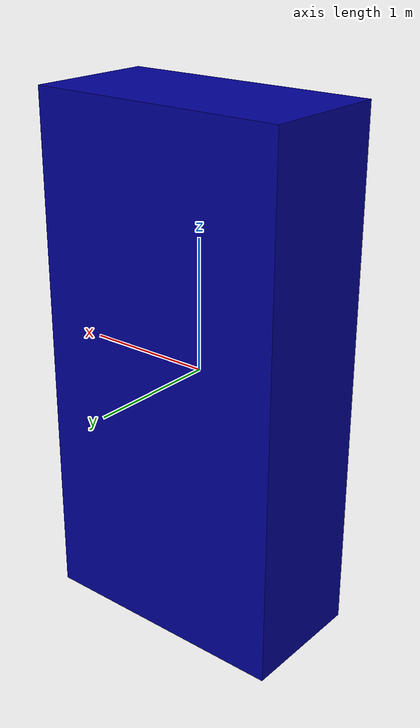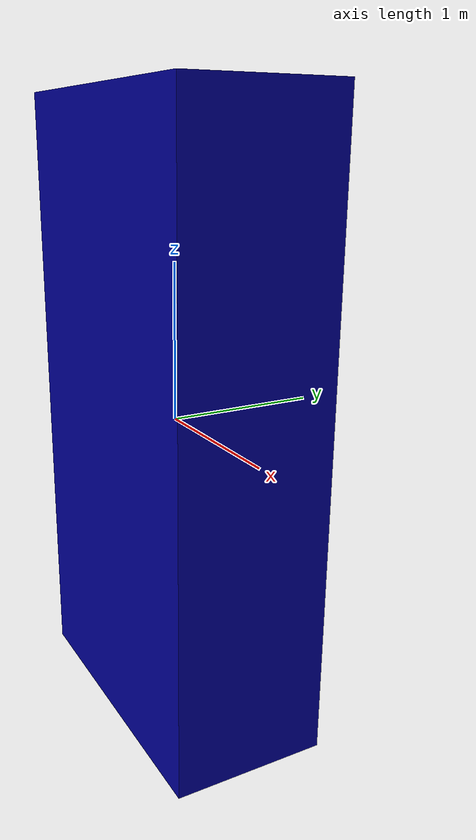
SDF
<sdf version="1.9">
<model name="domino" canonical_link="Cube_link">
  <link name="Cube_link">
    <collision name="Cube_collision">
      <pose relative_to="Cube_link">0.00000 -0.00000 -0.00000 0.00000 0.00000 0.00000</pose>
      <geometry>
        <box>
          <size>2.00000 1.00000 4.00000</size>
        </box>
      </geometry>
      <surface>
        <contact/>
      </surface>
    </collision>
    <inertial>
      <inertia>
        <ixx>1.41667</ixx>
        <ixy>0.00000</ixy>
        <ixz>0.00000</ixz>
        <iyy>1.66667</iyy>
        <iyz>0.00000</iyz>
        <izz>0.41667</izz>
      </inertia>
      <pose relative_to="Cube_link">0.00000 -0.00000 -0.00000 0.00000 0.00000 0.00000</pose>
      <mass>0.0500000</mass>
    </inertial>
    <visual name="Cube">
      <material>
        <diffuse>0.00000 0.00000 0.60000 0.90000</diffuse>
        <specular>0.00000 0.00000 0.60000 0.90000</specular>
        <emissive>0.00000 0.00000 0.60000 0.90000</emissive>
      </material>
      <pose relative_to="Cube_link">0.00000 0.00000 0.00000 0.00000 0.00000 0.00000</pose>
      <geometry>
        <box>
          <size>2.00000 1.00000 4.00000</size>
        </box>
      </geometry>
    </visual>
  </link>
</model>
</sdf>
